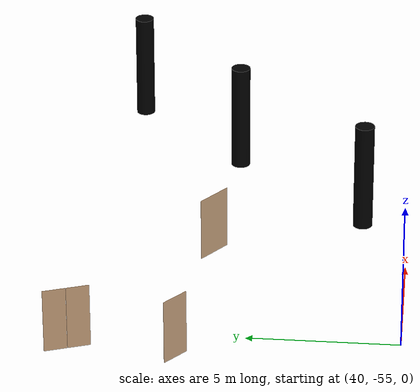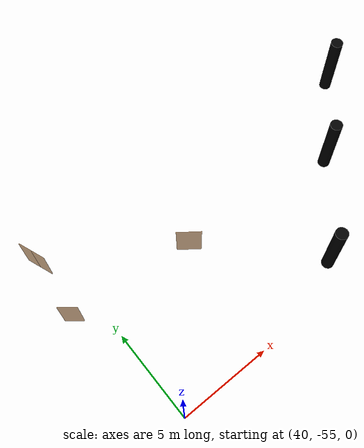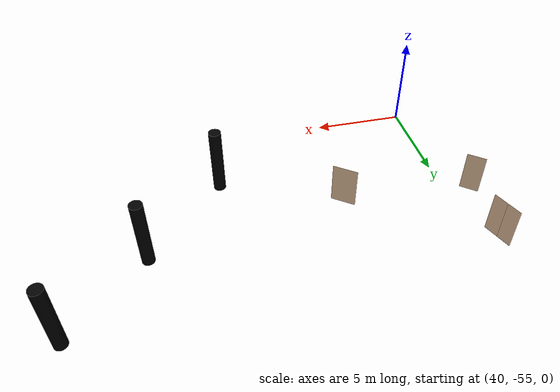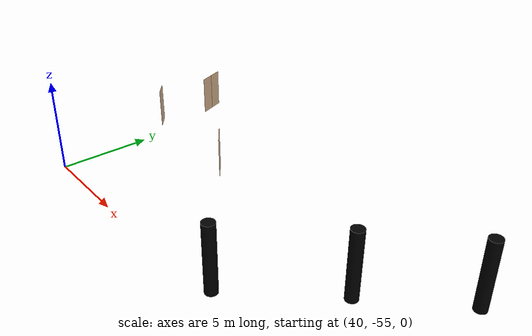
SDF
<sdf version="1.7">
 <world name="world">
  <model name="D9">
   <pose>45.5456 -48.4768 0 0 -0 2.50023</pose>
   <link name="right">
    <pose>0 0 1.11 0 -0 0</pose>
    <visual name="right_visual">
     <geometry><box><size>1.30298 0.03 2.2</size></box></geometry>
     <material><ambient>0.5 0.25 0 0.6</ambient><diffuse>0.5 0.25 0 0.6</diffuse></material>
    </visual>
    <collision name="right_collision">
     <geometry><box><size>1.30298 0.03 2.2</size></box></geometry>
     <surface><contact><collide_bitmask>2</collide_bitmask></contact></surface>
    </collision>
    <inertial>
     <mass>50</mass>
     <inertia><ixx>20.1704</ixx><iyy>27.2407</iyy><izz>7.07774</izz><ixy>0</ixy><ixz>0</ixz><iyz>0</iyz></inertia>
    </inertial>
   </link>
   <joint name="right_joint" type="revolute">
    <parent>world</parent>
    <child>right</child>
    <axis>
     <xyz>0 0 -1</xyz>
     <limit><lower>0</lower><upper>1.57</upper></limit>
     <dynamics><spring_reference>0</spring_reference><spring_stiffness>0</spring_stiffness></dynamics>
    </axis>
    <pose>0.65649 0 0 0 -0 0</pose>
   </joint>
   <plugin name="door_D9" filename="libdoor.so">
    <v_max_door>0.5</v_max_door>
    <a_max_door>0.3</a_max_door>
    <a_nom_door>0.15</a_nom_door>
    <dx_min_door>0.01</dx_min_door>
    <f_max_door>500.0</f_max_door>
    <door name="D9" type="SwingDoor" left_joint_name="empty_joint" right_joint_name="right_joint"/>
   </plugin>
  </model>
  <model name="D43">
   <pose>38.6636 -47.868 0 0 -0 2.45989</pose>
   <link name="right">
    <pose>0 0 1.11 0 -0 0</pose>
    <visual name="right_visual">
     <geometry><box><size>0.991421 0.03 2.2</size></box></geometry>
     <material><ambient>0.5 0.25 0 0.6</ambient><diffuse>0.5 0.25 0 0.6</diffuse></material>
    </visual>
    <collision name="right_collision">
     <geometry><box><size>0.991421 0.03 2.2</size></box></geometry>
     <surface><contact><collide_bitmask>2</collide_bitmask></contact></surface>
    </collision>
    <inertial>
     <mass>50</mass>
     <inertia><ixx>20.1704</ixx><iyy>24.2621</iyy><izz>4.09923</izz><ixy>0</ixy><ixz>0</ixz><iyz>0</iyz></inertia>
    </inertial>
   </link>
   <joint name="right_joint" type="revolute">
    <parent>world</parent>
    <child>right</child>
    <axis>
     <xyz>0 0 -1</xyz>
     <limit><lower>0</lower><upper>1.57</upper></limit>
     <dynamics><spring_reference>0</spring_reference><spring_stiffness>0</spring_stiffness></dynamics>
    </axis>
    <pose>0.50071 0 0 0 -0 0</pose>
   </joint>
   <plugin name="door_D43" filename="libdoor.so">
    <v_max_door>0.5</v_max_door>
    <a_max_door>0.3</a_max_door>
    <a_nom_door>0.15</a_nom_door>
    <dx_min_door>0.01</dx_min_door>
    <f_max_door>500.0</f_max_door>
    <door name="D43" type="SwingDoor" left_joint_name="empty_joint" right_joint_name="right_joint"/>
   </plugin>
  </model>
  <model name="DH9">
   <pose>38.9102 -44.3631 0 0 0 -1.21352</pose>
   <link name="right">
    <pose>0.385117 0 1.11 0 -0 0</pose>
    <visual name="right_visual">
     <geometry><box><size>0.760234 0.03 2.2</size></box></geometry>
     <material><ambient>0.5 0.25 0 0.6</ambient><diffuse>0.5 0.25 0 0.6</diffuse></material>
    </visual>
    <collision name="right_collision">
     <geometry><box><size>0.760234 0.03 2.2</size></box></geometry>
     <surface><contact><collide_bitmask>2</collide_bitmask></contact></surface>
    </collision>
    <inertial>
     <mass>50</mass>
     <inertia><ixx>20.1704</ixx><iyy>22.5748</iyy><izz>2.4119</izz><ixy>0</ixy><ixz>0</ixz><iyz>0</iyz></inertia>
    </inertial>
   </link>
   <joint name="right_joint" type="revolute">
    <parent>world</parent>
    <child>right</child>
    <axis>
     <xyz>0 0 -1</xyz>
     <limit><lower>0</lower><upper>1.57</upper></limit>
     <dynamics><spring_reference>0</spring_reference><spring_stiffness>0</spring_stiffness></dynamics>
    </axis>
    <pose>0.385117 0 0 0 -0 0</pose>
   </joint>
   <link name="left">
    <pose>-0.385117 0 1.11 0 -0 0</pose>
    <visual name="left_visual">
     <geometry><box><size>0.760234 0.03 2.2</size></box></geometry>
     <material><ambient>0.5 0.25 0 0.6</ambient><diffuse>0.5 0.25 0 0.6</diffuse></material>
    </visual>
    <collision name="left_collision">
     <geometry><box><size>0.760234 0.03 2.2</size></box></geometry>
     <surface><contact><collide_bitmask>2</collide_bitmask></contact></surface>
    </collision>
    <inertial>
     <mass>50</mass>
     <inertia><ixx>20.1704</ixx><iyy>22.5748</iyy><izz>2.4119</izz><ixy>0</ixy><ixz>0</ixz><iyz>0</iyz></inertia>
    </inertial>
   </link>
   <joint name="left_joint" type="revolute">
    <parent>world</parent>
    <child>left</child>
    <axis>
     <xyz>0 0 -1</xyz>
     <limit><lower>-1.57</lower><upper>0</upper></limit>
     <dynamics><spring_reference>0</spring_reference><spring_stiffness>0</spring_stiffness></dynamics>
    </axis>
    <pose>-0.385117 0 0 0 -0 0</pose>
   </joint>
   <plugin name="door_DH9" filename="libdoor.so">
    <v_max_door>0.5</v_max_door>
    <a_max_door>0.3</a_max_door>
    <a_nom_door>0.15</a_nom_door>
    <dx_min_door>0.01</dx_min_door>
    <f_max_door>500.0</f_max_door>
    <door name="DH9" type="DoubleSwingDoor" left_joint_name="left_joint" right_joint_name="right_joint"/>
   </plugin>
  </model>
  <model name="CylinderBlock_12">
   <link name="link">
    <inertial>
     <mass>1</mass>
     <inertia><ixx>1</ixx><ixy>0</ixy><ixz>0</ixz><iyy>1</iyy><iyz>0</iyz><izz>1</izz></inertia>
    </inertial>
    <visual name="visual">
     <geometry><cylinder><radius>0.35</radius><length>4.0</length></cylinder></geometry>
     <material>
      <shader type="pixel"><normal_map>__default__</normal_map></shader>
      <script><name>ModelPreview_1::link::visual_MATERIAL_</name><uri>__default__</uri></script>
      <ambient>0 0 0 1</ambient>
      <diffuse>0 0 0 1</diffuse>
      <specular>0 0 0 1</specular>
      <emissive>0 0 0 1</emissive>
     </material>
    </visual>
    <collision name="collision">
     <geometry><cylinder><radius>0.35</radius><length>4.0</length></cylinder></geometry>
     <surface>
      <friction>
       <ode><mu>1</mu><mu2>1</mu2><fdir1>0 0 0</fdir1><slip1>0</slip1><slip2>0</slip2></ode>
       <torsional>
        <coefficient>1</coefficient>
        <patch_radius>0</patch_radius>
        <surface_radius>0</surface_radius>
        <use_patch_radius>1</use_patch_radius>
        <ode><slip>0</slip></ode>
       </torsional>
      </friction>
      <bounce><restitution_coefficient>0</restitution_coefficient><threshold>1e+06</threshold></bounce>
      <contact>
       <collide_without_contact>0</collide_without_contact>
       <collide_without_contact_bitmask>1</collide_without_contact_bitmask>
       <collide_bitmask>1</collide_bitmask>
       <ode>
        <soft_cfm>0</soft_cfm>
        <soft_erp>0.2</soft_erp>
        <kp>1e+13</kp>
        <kd>1</kd>
        <max_vel>0.01</max_vel>
        <min_depth>0</min_depth>
       </ode>
       <bullet>
        <split_impulse>1</split_impulse>
        <split_impulse_penetration_threshold>-0.01</split_impulse_penetration_threshold>
        <soft_cfm>0</soft_cfm>
        <soft_erp>0.2</soft_erp>
        <kp>1e+13</kp>
        <kd>1</kd>
       </bullet>
      </contact>
     </surface>
    </collision>
   </link>
   <static>1</static>
   <pose>51.5114 -53.3162 0 0 -0 0</pose>
  </model>
  <model name="CylinderBlock_13">
   <link name="link">
    <inertial>
     <mass>1</mass>
     <inertia><ixx>1</ixx><ixy>0</ixy><ixz>0</ixz><iyy>1</iyy><iyz>0</iyz><izz>1</izz></inertia>
    </inertial>
    <visual name="visual">
     <geometry><cylinder><radius>0.35</radius><length>4.0</length></cylinder></geometry>
     <material>
      <shader type="pixel"><normal_map>__default__</normal_map></shader>
      <script><name>ModelPreview_1::link::visual_MATERIAL_</name><uri>__default__</uri></script>
      <ambient>0 0 0 1</ambient>
      <diffuse>0 0 0 1</diffuse>
      <specular>0 0 0 1</specular>
      <emissive>0 0 0 1</emissive>
     </material>
    </visual>
    <collision name="collision">
     <geometry><cylinder><radius>0.35</radius><length>4.0</length></cylinder></geometry>
     <surface>
      <friction>
       <ode><mu>1</mu><mu2>1</mu2><fdir1>0 0 0</fdir1><slip1>0</slip1><slip2>0</slip2></ode>
       <torsional>
        <coefficient>1</coefficient>
        <patch_radius>0</patch_radius>
        <surface_radius>0</surface_radius>
        <use_patch_radius>1</use_patch_radius>
        <ode><slip>0</slip></ode>
       </torsional>
      </friction>
      <bounce><restitution_coefficient>0</restitution_coefficient><threshold>1e+06</threshold></bounce>
      <contact>
       <collide_without_contact>0</collide_without_contact>
       <collide_without_contact_bitmask>1</collide_without_contact_bitmask>
       <collide_bitmask>1</collide_bitmask>
       <ode>
        <soft_cfm>0</soft_cfm>
        <soft_erp>0.2</soft_erp>
        <kp>1e+13</kp>
        <kd>1</kd>
        <max_vel>0.01</max_vel>
        <min_depth>0</min_depth>
       </ode>
       <bullet>
        <split_impulse>1</split_impulse>
        <split_impulse_penetration_threshold>-0.01</split_impulse_penetration_threshold>
        <soft_cfm>0</soft_cfm>
        <soft_erp>0.2</soft_erp>
        <kp>1e+13</kp>
        <kd>1</kd>
       </bullet>
      </contact>
     </surface>
    </collision>
   </link>
   <static>1</static>
   <pose>55.8946 -48.5189 0 0 -0 0</pose>
  </model>
  <model name="CylinderBlock_14">
   <link name="link">
    <inertial>
     <mass>1</mass>
     <inertia><ixx>1</ixx><ixy>0</ixy><ixz>0</ixz><iyy>1</iyy><iyz>0</iyz><izz>1</izz></inertia>
    </inertial>
    <visual name="visual">
     <geometry><cylinder><radius>0.35</radius><length>4.0</length></cylinder></geometry>
     <material>
      <shader type="pixel"><normal_map>__default__</normal_map></shader>
      <script><name>ModelPreview_1::link::visual_MATERIAL_</name><uri>__default__</uri></script>
      <ambient>0 0 0 1</ambient>
      <diffuse>0 0 0 1</diffuse>
      <specular>0 0 0 1</specular>
      <emissive>0 0 0 1</emissive>
     </material>
    </visual>
    <collision name="collision">
     <geometry><cylinder><radius>0.35</radius><length>4.0</length></cylinder></geometry>
     <surface>
      <friction>
       <ode><mu>1</mu><mu2>1</mu2><fdir1>0 0 0</fdir1><slip1>0</slip1><slip2>0</slip2></ode>
       <torsional>
        <coefficient>1</coefficient>
        <patch_radius>0</patch_radius>
        <surface_radius>0</surface_radius>
        <use_patch_radius>1</use_patch_radius>
        <ode><slip>0</slip></ode>
       </torsional>
      </friction>
      <bounce><restitution_coefficient>0</restitution_coefficient><threshold>1e+06</threshold></bounce>
      <contact>
       <collide_without_contact>0</collide_without_contact>
       <collide_without_contact_bitmask>1</collide_without_contact_bitmask>
       <collide_bitmask>1</collide_bitmask>
       <ode>
        <soft_cfm>0</soft_cfm>
        <soft_erp>0.2</soft_erp>
        <kp>1e+13</kp>
        <kd>1</kd>
        <max_vel>0.01</max_vel>
        <min_depth>0</min_depth>
       </ode>
       <bullet>
        <split_impulse>1</split_impulse>
        <split_impulse_penetration_threshold>-0.01</split_impulse_penetration_threshold>
        <soft_cfm>0</soft_cfm>
        <soft_erp>0.2</soft_erp>
        <kp>1e+13</kp>
        <kd>1</kd>
       </bullet>
      </contact>
     </surface>
    </collision>
   </link>
   <static>1</static>
   <pose>59.9914 -44.4442 0 0 -0 0</pose>
  </model>
 </world>
</sdf>
